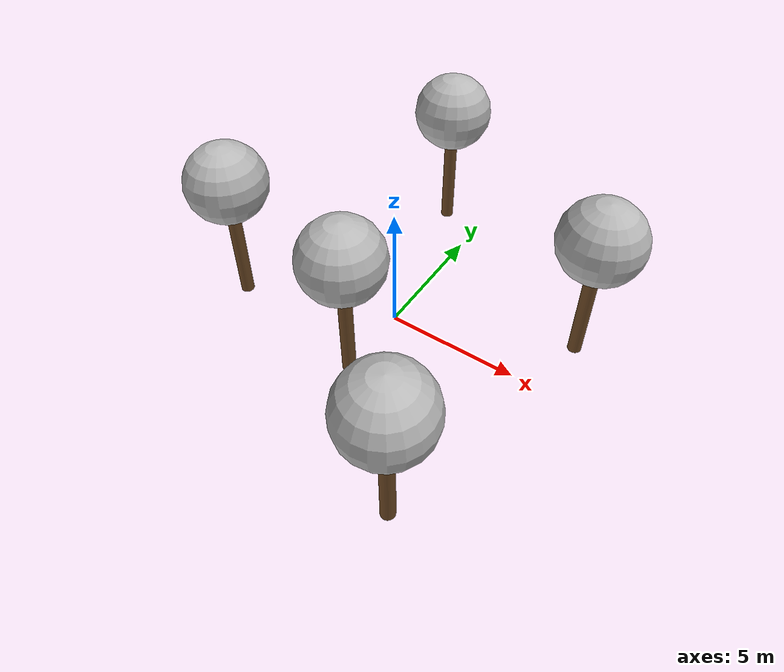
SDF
<sdf version="1.7">
 <world name="default">
  <plugin name="mrs_gazebo_static_transform_republisher_plugin" filename="libMrsGazeboCommonResources_StaticTransformRepublisher.so"/>
  <spherical_coordinates>
   <surface_model>EARTH_WGS84</surface_model>
   <latitude_deg>47.3977</latitude_deg>
   <longitude_deg>8.54559</longitude_deg>
   <elevation>0</elevation>
   <heading_deg>0</heading_deg>
  </spherical_coordinates>
  <physics name="default_physics" default="0" type="ode">
   <ode>
    <solver>
     <type>quick</type>
     <iters>10</iters>
     <sor>1.3</sor>
     <use_dynamic_moi_rescaling>0</use_dynamic_moi_rescaling>
    </solver>
    <constraints>
     <cfm>0</cfm>
     <erp>0.2</erp>
     <contact_max_correcting_vel>1000</contact_max_correcting_vel>
     <contact_surface_layer>0.001</contact_surface_layer>
    </constraints>
   </ode>
   <max_step_size>0.004</max_step_size>
   <real_time_factor>1</real_time_factor>
   <real_time_update_rate>250</real_time_update_rate>
  </physics>
  <scene><shadows>0</shadows><ambient>0.4 0.4 0.4 1</ambient><background>0.7 0.7 0.7 1</background></scene>
  <light name="sun" type="directional">
   <pose>0 0 1000 0.4 0.2 0</pose>
   <diffuse>1 1 1 1</diffuse>
   <specular>0.6 0.6 0.6 1</specular>
   <direction>0.1 0.1 -0.9</direction>
   <attenuation>
    <range>20</range>
    <constant>0.5</constant>
    <linear>0.01</linear>
    <quadratic>0.001</quadratic>
   </attenuation>
   <spot><inner_angle>0</inner_angle><outer_angle>0</outer_angle><falloff>0</falloff></spot>
  </light>
  <model name="the_void">
   <static>1</static>
   <link name="link">
    <pose>0 0 0.1 0 -0 0</pose>
    <visual name="the_void">
     <pose>0 0 2 0 -0 0</pose>
     <geometry><sphere><radius>0.25</radius></sphere></geometry>
     <material>
      <script><uri>file://media/materials/scripts/Gazebo.material</uri><name>Gazebo/Black</name></script>
     </material>
    </visual>
   </link>
   <pose>-1000 -1000 0 0 -0 0</pose>
  </model>
  <plugin name="mrs_gazebo_rviz_cam_synchronizer" filename="libMrsGazeboCommonResources_RvizCameraSynchronizer.so">
   <target_frame_id>gazebo_user_camera</target_frame_id>
   <world_origin_frame_id>uav1/gps_origin</world_origin_frame_id>
   <frame_to_follow>uav1</frame_to_follow>
  </plugin>
  <gravity>0 0 -9.8066</gravity>
  <magnetic_field>6e-06 2.3e-05 -4.2e-05</magnetic_field>
  <atmosphere type="adiabatic"/>
  <model name="tree_simple">
   <static>1</static>
   <link name="link">
    <pose>0 0 0.1 0 -0 0</pose>
    <inertial>
     <mass>666</mass>
     <inertia>
      <ixx>0.0861167</ixx>
      <ixy>0</ixy>
      <ixz>0</ixz>
      <iyy>0.0861167</iyy>
      <iyz>0</iyz>
      <izz>0.0861167</izz>
     </inertia>
    </inertial>
    <collision name="collision_trunk">
     <pose>0 0 2 0 -0 0</pose>
     <geometry><cylinder><radius>0.25</radius><length>4</length></cylinder></geometry>
     <surface>
      <contact>
       <poissons_ratio>0.347</poissons_ratio>
       <elastic_modulus>8.8e+09</elastic_modulus>
       <ode><kp>100000</kp><kd>100</kd><max_vel>100</max_vel><min_depth>0.001</min_depth></ode>
      </contact>
      <friction>
       <torsional>
        <coefficient>1</coefficient>
        <use_patch_radius>0</use_patch_radius>
        <surface_radius>0.01</surface_radius>
       </torsional>
      </friction>
     </surface>
    </collision>
    <collision name="collision_treetop">
     <pose>0 0 5.2 0 -0 0</pose>
     <geometry><sphere><radius>1.5</radius></sphere></geometry>
     <surface>
      <contact>
       <poissons_ratio>0.347</poissons_ratio>
       <elastic_modulus>8.8e+09</elastic_modulus>
       <ode><kp>100000</kp><kd>100</kd><max_vel>100</max_vel><min_depth>0.001</min_depth></ode>
      </contact>
      <friction>
       <torsional>
        <coefficient>1</coefficient>
        <use_patch_radius>0</use_patch_radius>
        <surface_radius>0.01</surface_radius>
       </torsional>
      </friction>
     </surface>
    </collision>
    <visual name="trunk">
     <pose>0 0 2 0 -0 0</pose>
     <geometry><cylinder><radius>0.25</radius><length>4</length></cylinder></geometry>
     <material>
      <script>
       <uri>model://tree_simple/scripts</uri>
       <uri>model://tree_simple/materials/textures</uri>
       <name>TreeSimple/Trunk</name>
      </script>
     </material>
    </visual>
    <visual name="treetop">
     <pose>0 0 5.2 0 -0 0</pose>
     <geometry><sphere><radius>1.5</radius></sphere></geometry>
     <material>
      <script>
       <uri>model://tree_simple/scripts</uri>
       <uri>model://tree_simple/materials/textures</uri>
       <name>TreeSimple/Treetop</name>
      </script>
     </material>
    </visual>
   </link>
   <pose>-0.0029 -2.90443 0 0 -0 0</pose>
  </model>
  <model name="tree_simple_0">
   <static>1</static>
   <link name="link">
    <pose>0 0 0.1 0 -0 0</pose>
    <inertial>
     <mass>666</mass>
     <inertia>
      <ixx>0.0861167</ixx>
      <ixy>0</ixy>
      <ixz>0</ixz>
      <iyy>0.0861167</iyy>
      <iyz>0</iyz>
      <izz>0.0861167</izz>
     </inertia>
    </inertial>
    <collision name="collision_trunk">
     <pose>0 0 2 0 -0 0</pose>
     <geometry><cylinder><radius>0.25</radius><length>4</length></cylinder></geometry>
     <surface>
      <contact>
       <poissons_ratio>0.347</poissons_ratio>
       <elastic_modulus>8.8e+09</elastic_modulus>
       <ode><kp>100000</kp><kd>100</kd><max_vel>100</max_vel><min_depth>0.001</min_depth></ode>
      </contact>
      <friction>
       <torsional>
        <coefficient>1</coefficient>
        <use_patch_radius>0</use_patch_radius>
        <surface_radius>0.01</surface_radius>
       </torsional>
      </friction>
     </surface>
    </collision>
    <collision name="collision_treetop">
     <pose>0 0 5.2 0 -0 0</pose>
     <geometry><sphere><radius>1.5</radius></sphere></geometry>
     <surface>
      <contact>
       <poissons_ratio>0.347</poissons_ratio>
       <elastic_modulus>8.8e+09</elastic_modulus>
       <ode><kp>100000</kp><kd>100</kd><max_vel>100</max_vel><min_depth>0.001</min_depth></ode>
      </contact>
      <friction>
       <torsional>
        <coefficient>1</coefficient>
        <use_patch_radius>0</use_patch_radius>
        <surface_radius>0.01</surface_radius>
       </torsional>
      </friction>
     </surface>
    </collision>
    <visual name="trunk">
     <pose>0 0 2 0 -0 0</pose>
     <geometry><cylinder><radius>0.25</radius><length>4</length></cylinder></geometry>
     <material>
      <script>
       <uri>model://tree_simple/scripts</uri>
       <uri>model://tree_simple/materials/textures</uri>
       <name>TreeSimple/Trunk</name>
      </script>
     </material>
    </visual>
    <visual name="treetop">
     <pose>0 0 5.2 0 -0 0</pose>
     <geometry><sphere><radius>1.5</radius></sphere></geometry>
     <material>
      <script>
       <uri>model://tree_simple/scripts</uri>
       <uri>model://tree_simple/materials/textures</uri>
       <name>TreeSimple/Treetop</name>
      </script>
     </material>
    </visual>
   </link>
   <pose>-5.72706 -1.99569 0 0 -0 0</pose>
  </model>
  <model name="tree_simple_1">
   <static>1</static>
   <link name="link">
    <pose>0 0 0.1 0 -0 0</pose>
    <inertial>
     <mass>666</mass>
     <inertia>
      <ixx>0.0861167</ixx>
      <ixy>0</ixy>
      <ixz>0</ixz>
      <iyy>0.0861167</iyy>
      <iyz>0</iyz>
      <izz>0.0861167</izz>
     </inertia>
    </inertial>
    <collision name="collision_trunk">
     <pose>0 0 2 0 -0 0</pose>
     <geometry><cylinder><radius>0.25</radius><length>4</length></cylinder></geometry>
     <surface>
      <contact>
       <poissons_ratio>0.347</poissons_ratio>
       <elastic_modulus>8.8e+09</elastic_modulus>
       <ode><kp>100000</kp><kd>100</kd><max_vel>100</max_vel><min_depth>0.001</min_depth></ode>
      </contact>
      <friction>
       <torsional>
        <coefficient>1</coefficient>
        <use_patch_radius>0</use_patch_radius>
        <surface_radius>0.01</surface_radius>
       </torsional>
      </friction>
     </surface>
    </collision>
    <collision name="collision_treetop">
     <pose>0 0 5.2 0 -0 0</pose>
     <geometry><sphere><radius>1.5</radius></sphere></geometry>
     <surface>
      <contact>
       <poissons_ratio>0.347</poissons_ratio>
       <elastic_modulus>8.8e+09</elastic_modulus>
       <ode><kp>100000</kp><kd>100</kd><max_vel>100</max_vel><min_depth>0.001</min_depth></ode>
      </contact>
      <friction>
       <torsional>
        <coefficient>1</coefficient>
        <use_patch_radius>0</use_patch_radius>
        <surface_radius>0.01</surface_radius>
       </torsional>
      </friction>
     </surface>
    </collision>
    <visual name="trunk">
     <pose>0 0 2 0 -0 0</pose>
     <geometry><cylinder><radius>0.25</radius><length>4</length></cylinder></geometry>
     <material>
      <script>
       <uri>model://tree_simple/scripts</uri>
       <uri>model://tree_simple/materials/textures</uri>
       <name>TreeSimple/Trunk</name>
      </script>
     </material>
    </visual>
    <visual name="treetop">
     <pose>0 0 5.2 0 -0 0</pose>
     <geometry><sphere><radius>1.5</radius></sphere></geometry>
     <material>
      <script>
       <uri>model://tree_simple/scripts</uri>
       <uri>model://tree_simple/materials/textures</uri>
       <name>TreeSimple/Treetop</name>
      </script>
     </material>
    </visual>
   </link>
   <pose>6.32824 2.35426 0 0 -0 0</pose>
  </model>
  <model name="tree_simple_2">
   <static>1</static>
   <link name="link">
    <pose>0 0 0.1 0 -0 0</pose>
    <inertial>
     <mass>666</mass>
     <inertia>
      <ixx>0.0861167</ixx>
      <ixy>0</ixy>
      <ixz>0</ixz>
      <iyy>0.0861167</iyy>
      <iyz>0</iyz>
      <izz>0.0861167</izz>
     </inertia>
    </inertial>
    <collision name="collision_trunk">
     <pose>0 0 2 0 -0 0</pose>
     <geometry><cylinder><radius>0.25</radius><length>4</length></cylinder></geometry>
     <surface>
      <contact>
       <poissons_ratio>0.347</poissons_ratio>
       <elastic_modulus>8.8e+09</elastic_modulus>
       <ode><kp>100000</kp><kd>100</kd><max_vel>100</max_vel><min_depth>0.001</min_depth></ode>
      </contact>
      <friction>
       <torsional>
        <coefficient>1</coefficient>
        <use_patch_radius>0</use_patch_radius>
        <surface_radius>0.01</surface_radius>
       </torsional>
      </friction>
     </surface>
    </collision>
    <collision name="collision_treetop">
     <pose>0 0 5.2 0 -0 0</pose>
     <geometry><sphere><radius>1.5</radius></sphere></geometry>
     <surface>
      <contact>
       <poissons_ratio>0.347</poissons_ratio>
       <elastic_modulus>8.8e+09</elastic_modulus>
       <ode><kp>100000</kp><kd>100</kd><max_vel>100</max_vel><min_depth>0.001</min_depth></ode>
      </contact>
      <friction>
       <torsional>
        <coefficient>1</coefficient>
        <use_patch_radius>0</use_patch_radius>
        <surface_radius>0.01</surface_radius>
       </torsional>
      </friction>
     </surface>
    </collision>
    <visual name="trunk">
     <pose>0 0 2 0 -0 0</pose>
     <geometry><cylinder><radius>0.25</radius><length>4</length></cylinder></geometry>
     <material>
      <script>
       <uri>model://tree_simple/scripts</uri>
       <uri>model://tree_simple/materials/textures</uri>
       <name>TreeSimple/Trunk</name>
      </script>
     </material>
    </visual>
    <visual name="treetop">
     <pose>0 0 5.2 0 -0 0</pose>
     <geometry><sphere><radius>1.5</radius></sphere></geometry>
     <material>
      <script>
       <uri>model://tree_simple/scripts</uri>
       <uri>model://tree_simple/materials/textures</uri>
       <name>TreeSimple/Treetop</name>
      </script>
     </material>
    </visual>
   </link>
   <pose>-1.53654 6.40407 0 0 -0 0</pose>
  </model>
  <model name="tree_simple_3">
   <static>1</static>
   <link name="link">
    <pose>0 0 0.1 0 -0 0</pose>
    <inertial>
     <mass>666</mass>
     <inertia>
      <ixx>0.0861167</ixx>
      <ixy>0</ixy>
      <ixz>0</ixz>
      <iyy>0.0861167</iyy>
      <iyz>0</iyz>
      <izz>0.0861167</izz>
     </inertia>
    </inertial>
    <collision name="collision_trunk">
     <pose>0 0 2 0 -0 0</pose>
     <geometry><cylinder><radius>0.25</radius><length>4</length></cylinder></geometry>
     <surface>
      <contact>
       <poissons_ratio>0.347</poissons_ratio>
       <elastic_modulus>8.8e+09</elastic_modulus>
       <ode><kp>100000</kp><kd>100</kd><max_vel>100</max_vel><min_depth>0.001</min_depth></ode>
      </contact>
      <friction>
       <torsional>
        <coefficient>1</coefficient>
        <use_patch_radius>0</use_patch_radius>
        <surface_radius>0.01</surface_radius>
       </torsional>
      </friction>
     </surface>
    </collision>
    <collision name="collision_treetop">
     <pose>0 0 5.2 0 -0 0</pose>
     <geometry><sphere><radius>1.5</radius></sphere></geometry>
     <surface>
      <contact>
       <poissons_ratio>0.347</poissons_ratio>
       <elastic_modulus>8.8e+09</elastic_modulus>
       <ode><kp>100000</kp><kd>100</kd><max_vel>100</max_vel><min_depth>0.001</min_depth></ode>
      </contact>
      <friction>
       <torsional>
        <coefficient>1</coefficient>
        <use_patch_radius>0</use_patch_radius>
        <surface_radius>0.01</surface_radius>
       </torsional>
      </friction>
     </surface>
    </collision>
    <visual name="trunk">
     <pose>0 0 2 0 -0 0</pose>
     <geometry><cylinder><radius>0.25</radius><length>4</length></cylinder></geometry>
     <material>
      <script>
       <uri>model://tree_simple/scripts</uri>
       <uri>model://tree_simple/materials/textures</uri>
       <name>TreeSimple/Trunk</name>
      </script>
     </material>
    </visual>
    <visual name="treetop">
     <pose>0 0 5.2 0 -0 0</pose>
     <geometry><sphere><radius>1.5</radius></sphere></geometry>
     <material>
      <script>
       <uri>model://tree_simple/scripts</uri>
       <uri>model://tree_simple/materials/textures</uri>
       <name>TreeSimple/Treetop</name>
      </script>
     </material>
    </visual>
   </link>
   <pose>4.26793 -6.6885 0 0 -0 0</pose>
  </model>
 </world>
</sdf>
